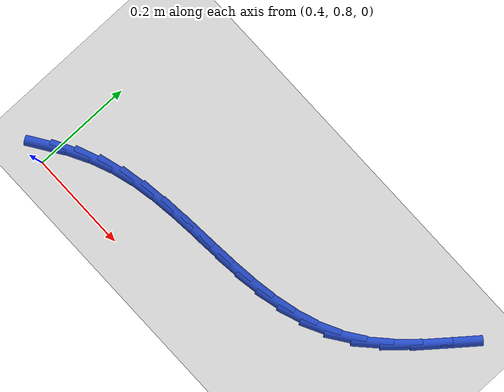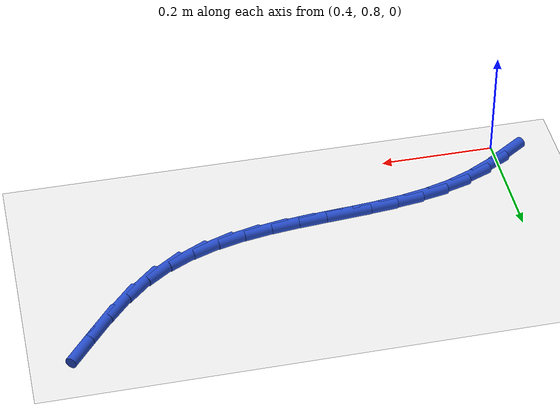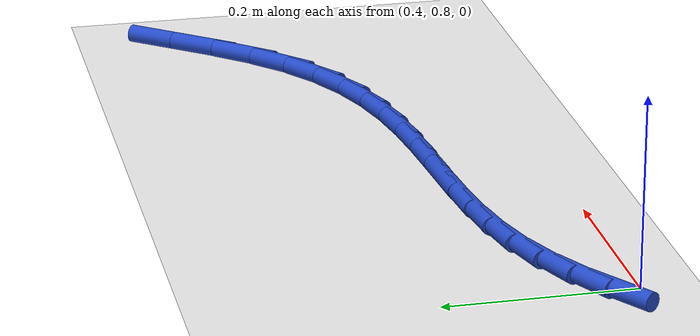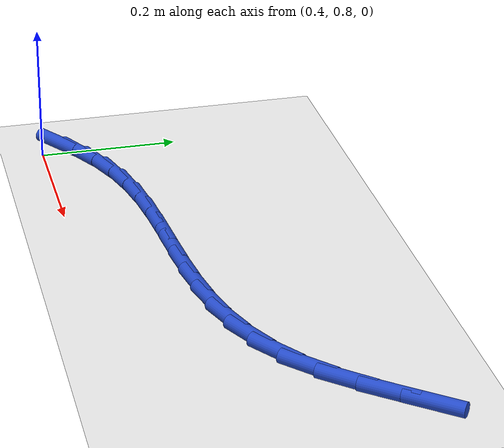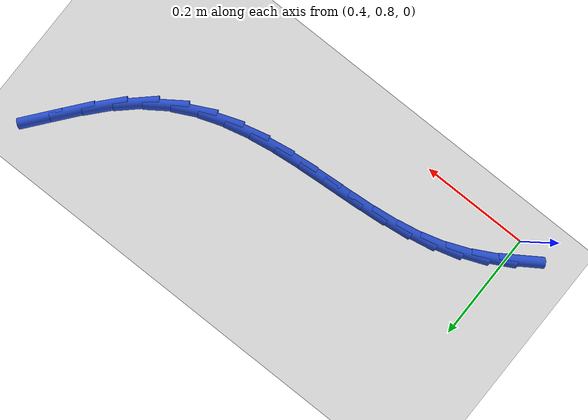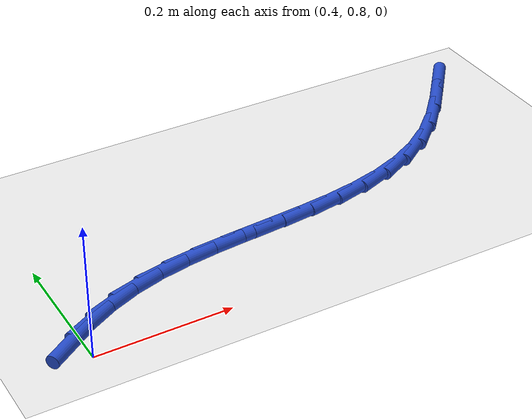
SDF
<sdf version="1.6">
 <world name="default">
  <model name="ground_plane">
   <static>1</static>
   <link name="link">
    <collision name="collision">
     <geometry><plane><normal>0 0 1</normal><size>100 100</size></plane></geometry>
     <surface><friction><ode><mu>100</mu><mu2>50</mu2></ode></friction></surface>
    </collision>
    <visual name="visual">
     <cast_shadows>0</cast_shadows>
     <geometry><plane><normal>0 0 1</normal><size>100 100</size></plane></geometry>
     <material>
      <script><uri>file://media/materials/scripts/gazebo.material</uri><name>Gazebo/WhiteGlow</name></script>
     </material>
    </visual>
   </link>
  </model>
  <model name="line">
   <link name="link_19">
    <pose>0.3806509971987691 0.8272245077653136 0.01 0 1.57 0.5863861862324145</pose>
    <collision name="collision">
     <geometry><cylinder><radius>0.01</radius><length>0.08</length></cylinder></geometry>
    </collision>
    <visual name="visual">
     <material>
      <script><name>Gazebo/Blue</name><uri>file://media/materials/scripts/gazebo.material</uri></script>
     </material>
     <geometry><cylinder><radius>0.01</radius><length>0.08</length></cylinder></geometry>
    </visual>
   </link>
   <link name="link_20">
    <pose>0.41978472797266486 0.8532223894776179 0.01 0 1.57 0.48966066383717854</pose>
    <collision name="collision">
     <geometry><cylinder><radius>0.01</radius><length>0.08</length></cylinder></geometry>
    </collision>
    <visual name="visual">
     <material>
      <script><name>Gazebo/Blue</name><uri>file://media/materials/scripts/gazebo.material</uri></script>
     </material>
     <geometry><cylinder><radius>0.01</radius><length>0.08</length></cylinder></geometry>
    </visual>
   </link>
   <link name="link_21">
    <pose>0.460824027852757 0.875094380676525 0.01 0 1.57 0.3843709245489825</pose>
    <collision name="collision">
     <geometry><cylinder><radius>0.01</radius><length>0.08</length></cylinder></geometry>
    </collision>
    <visual name="visual">
     <material>
      <script><name>Gazebo/Blue</name><uri>file://media/materials/scripts/gazebo.material</uri></script>
     </material>
     <geometry><cylinder><radius>0.01</radius><length>0.08</length></cylinder></geometry>
    </visual>
   </link>
   <link name="link_22">
    <pose>0.503774619007829 0.8924674583285971 0.01 0 1.57 0.27609932247218366</pose>
    <collision name="collision">
     <geometry><cylinder><radius>0.01</radius><length>0.08</length></cylinder></geometry>
    </collision>
    <visual name="visual">
     <material>
      <script><name>Gazebo/Blue</name><uri>file://media/materials/scripts/gazebo.material</uri></script>
     </material>
     <geometry><cylinder><radius>0.01</radius><length>0.08</length></cylinder></geometry>
    </visual>
   </link>
   <link name="link_23">
    <pose>0.5485912730996741 0.9051656218235199 0.01 0 1.57 0.18766792251551653</pose>
    <collision name="collision">
     <geometry><cylinder><radius>0.01</radius><length>0.08</length></cylinder></geometry>
    </collision>
    <visual name="visual">
     <material>
      <script><name>Gazebo/Blue</name><uri>file://media/materials/scripts/gazebo.material</uri></script>
     </material>
     <geometry><cylinder><radius>0.01</radius><length>0.08</length></cylinder></geometry>
    </visual>
   </link>
   <link name="link_24">
    <pose>0.5949799644858897 0.913974954161815 0.01 0 1.57 0.12540876024514963</pose>
    <collision name="collision">
     <geometry><cylinder><radius>0.01</radius><length>0.08</length></cylinder></geometry>
    </collision>
    <visual name="visual">
     <material>
      <script><name>Gazebo/Blue</name><uri>file://media/materials/scripts/gazebo.material</uri></script>
     </material>
     <geometry><cylinder><radius>0.01</radius><length>0.08</length></cylinder></geometry>
    </visual>
   </link>
   <link name="link_25">
    <pose>0.642570841273715 0.9199747537105335 0.01 0 1.57 0.08794592201370506</pose>
    <collision name="collision">
     <geometry><cylinder><radius>0.01</radius><length>0.08</length></cylinder></geometry>
    </collision>
    <visual name="visual">
     <material>
      <script><name>Gazebo/Blue</name><uri>file://media/materials/scripts/gazebo.material</uri></script>
     </material>
     <geometry><cylinder><radius>0.01</radius><length>0.08</length></cylinder></geometry>
    </visual>
   </link>
   <link name="link_26">
    <pose>0.6909940333038781 0.9242443894721751 0.01 0 1.57 0.07389189313688703</pose>
    <collision name="collision">
     <geometry><cylinder><radius>0.01</radius><length>0.08</length></cylinder></geometry>
    </collision>
    <visual name="visual">
     <material>
      <script><name>Gazebo/Blue</name><uri>file://media/materials/scripts/gazebo.material</uri></script>
     </material>
     <geometry><cylinder><radius>0.01</radius><length>0.08</length></cylinder></geometry>
    </visual>
   </link>
   <link name="link_27">
    <pose>0.7398796704171086 0.9278632304492406 0.01 0 1.57 0.08244971559735163</pose>
    <collision name="collision">
     <geometry><cylinder><radius>0.01</radius><length>0.08</length></cylinder></geometry>
    </collision>
    <visual name="visual">
     <material>
      <script><name>Gazebo/Blue</name><uri>file://media/materials/scripts/gazebo.material</uri></script>
     </material>
     <geometry><cylinder><radius>0.01</radius><length>0.08</length></cylinder></geometry>
    </visual>
   </link>
   <link name="link_28">
    <pose>0.7888578824541354 0.9319106456442295 0.01 0 1.57 0.11357997765792925</pose>
    <collision name="collision">
     <geometry><cylinder><radius>0.01</radius><length>0.08</length></cylinder></geometry>
    </collision>
    <visual name="visual">
     <material>
      <script><name>Gazebo/Blue</name><uri>file://media/materials/scripts/gazebo.material</uri></script>
     </material>
     <geometry><cylinder><radius>0.01</radius><length>0.08</length></cylinder></geometry>
    </visual>
   </link>
   <link name="link_29">
    <pose>0.8375587992556878 0.9374660040596423 0.01 0 1.57 0.16785479780062</pose>
    <collision name="collision">
     <geometry><cylinder><radius>0.01</radius><length>0.08</length></cylinder></geometry>
    </collision>
    <visual name="visual">
     <material>
      <script><name>Gazebo/Blue</name><uri>file://media/materials/scripts/gazebo.material</uri></script>
     </material>
     <geometry><cylinder><radius>0.01</radius><length>0.08</length></cylinder></geometry>
    </visual>
   </link>
   <link name="link_30">
    <pose>0.8856125506624949 0.9456086746979793 0.01 0 1.57 0.24598234052987153</pose>
    <collision name="collision">
     <geometry><cylinder><radius>0.01</radius><length>0.08</length></cylinder></geometry>
    </collision>
    <visual name="visual">
     <material>
      <script><name>Gazebo/Blue</name><uri>file://media/materials/scripts/gazebo.material</uri></script>
     </material>
     <geometry><cylinder><radius>0.01</radius><length>0.08</length></cylinder></geometry>
    </visual>
   </link>
   <link name="link_31">
    <pose>0.9326492665152855 0.95741802656174 0.01 0 1.57 0.34790920960821775</pose>
    <collision name="collision">
     <geometry><cylinder><radius>0.01</radius><length>0.08</length></cylinder></geometry>
    </collision>
    <visual name="visual">
     <material>
      <script><name>Gazebo/Blue</name><uri>file://media/materials/scripts/gazebo.material</uri></script>
     </material>
     <geometry><cylinder><radius>0.01</radius><length>0.08</length></cylinder></geometry>
    </visual>
   </link>
   <link name="link_32">
    <pose>0.9782990766547889 0.9739734286534252 0.01 0 1.57 0.47153192324504506</pose>
    <collision name="collision">
     <geometry><cylinder><radius>0.01</radius><length>0.08</length></cylinder></geometry>
    </collision>
    <visual name="visual">
     <material>
      <script><name>Gazebo/Blue</name><uri>file://media/materials/scripts/gazebo.material</uri></script>
     </material>
     <geometry><cylinder><radius>0.01</radius><length>0.08</length></cylinder></geometry>
    </visual>
   </link>
   <link name="link_33">
    <pose>1.022192110921734 0.9963542499755345 0.01 0 1.57 0.6115151194935744</pose>
    <collision name="collision">
     <geometry><cylinder><radius>0.01</radius><length>0.08</length></cylinder></geometry>
    </collision>
    <visual name="visual">
     <material>
      <script><name>Gazebo/Blue</name><uri>file://media/materials/scripts/gazebo.material</uri></script>
     </material>
     <geometry><cylinder><radius>0.01</radius><length>0.08</length></cylinder></geometry>
    </visual>
   </link>
   <link name="link_34">
    <pose>1.0639584991568505 1.0256398595305685 0.01 0 1.57 0.7512235024314385</pose>
    <collision name="collision">
     <geometry><cylinder><radius>0.01</radius><length>0.08</length></cylinder></geometry>
    </collision>
    <visual name="visual">
     <material>
      <script><name>Gazebo/Blue</name><uri>file://media/materials/scripts/gazebo.material</uri></script>
     </material>
     <geometry><cylinder><radius>0.01</radius><length>0.08</length></cylinder></geometry>
    </visual>
   </link>
   <link name="link_35">
    <pose>1.103324843766285 1.0624034752293818 0.01 0 1.57 0.8455147471034684</pose>
    <collision name="collision">
     <geometry><cylinder><radius>0.01</radius><length>0.08</length></cylinder></geometry>
    </collision>
    <visual name="visual">
     <material>
      <script><name>Gazebo/Blue</name><uri>file://media/materials/scripts/gazebo.material</uri></script>
     </material>
     <geometry><cylinder><radius>0.01</radius><length>0.08</length></cylinder></geometry>
    </visual>
   </link>
   <link name="link_36">
    <pose>1.1405545635812055 1.1044018643332651 0.01 0 1.57 0.8915097424041345</pose>
    <collision name="collision">
     <geometry><cylinder><radius>0.01</radius><length>0.08</length></cylinder></geometry>
    </collision>
    <visual name="visual">
     <material>
      <script><name>Gazebo/Blue</name><uri>file://media/materials/scripts/gazebo.material</uri></script>
     </material>
     <geometry><cylinder><radius>0.01</radius><length>0.08</length></cylinder></geometry>
    </visual>
   </link>
   <link name="link_37">
    <pose>1.1760967063857157 1.1484178768373656 0.01 0 1.57 0.895324501023182</pose>
    <collision name="collision">
     <geometry><cylinder><radius>0.01</radius><length>0.08</length></cylinder></geometry>
    </collision>
    <visual name="visual">
     <material>
      <script><name>Gazebo/Blue</name><uri>file://media/materials/scripts/gazebo.material</uri></script>
     </material>
     <geometry><cylinder><radius>0.01</radius><length>0.08</length></cylinder></geometry>
    </visual>
   </link>
  </model>
 </world>
</sdf>
